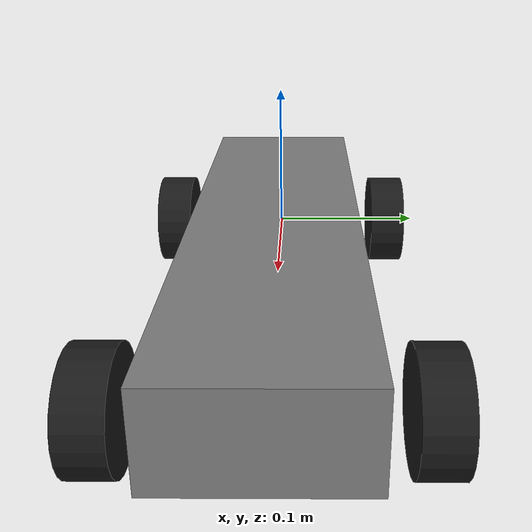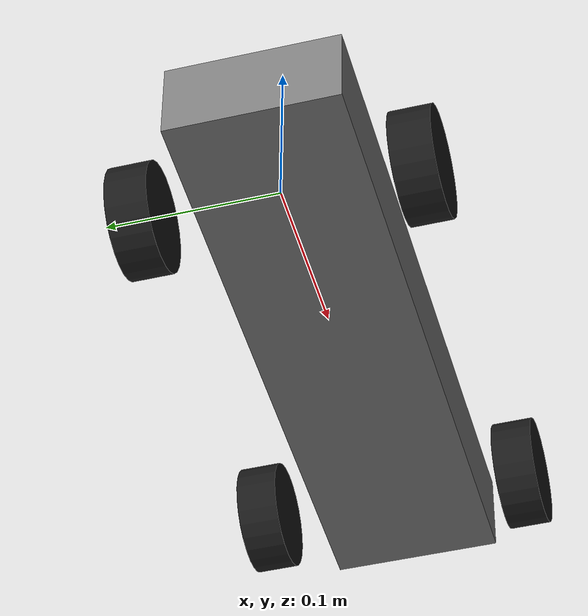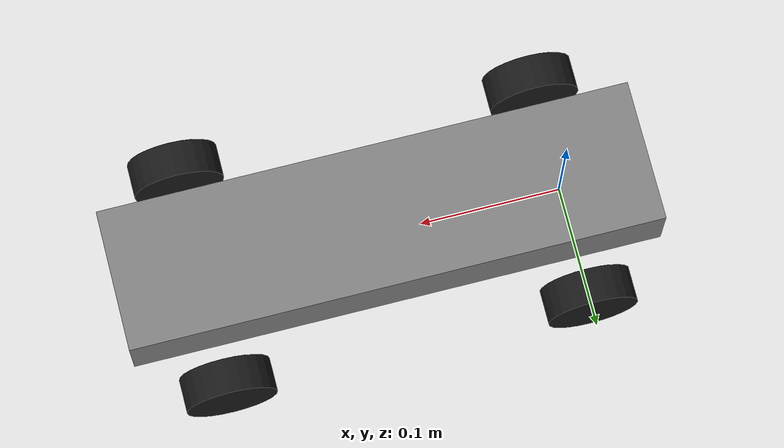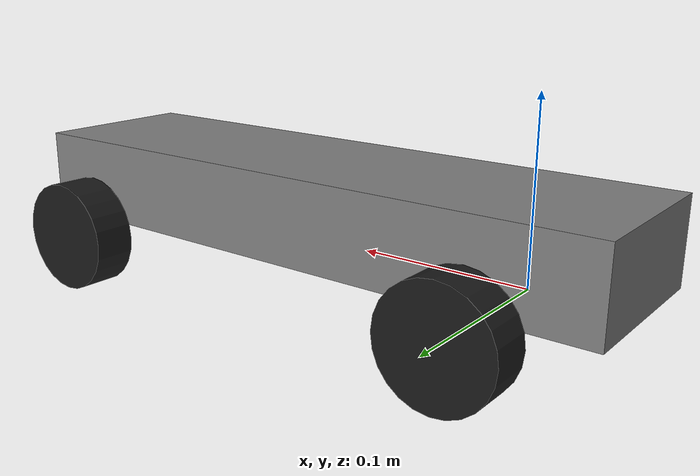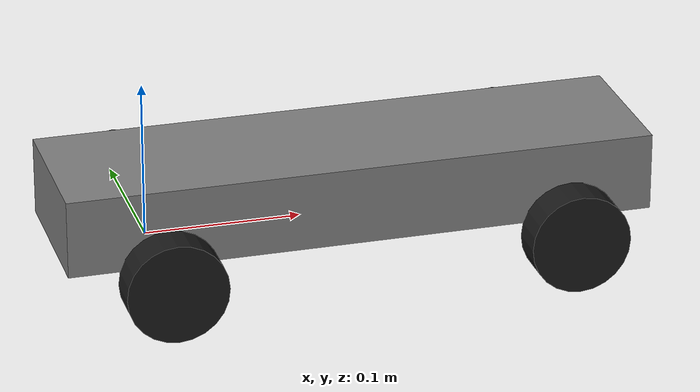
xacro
<?xml version="1.0"?>
<robot xmlns:xacro="http://www.ros.org/wiki/xacro" >

    <xacro:include filename="robot_materials.xacro"></xacro:include>
    <xacro:include filename="wheel_macros.xacro"></xacro:include>
    <xacro:include filename="inertial_macros.xacro"></xacro:include>

    <!-- Hardware Dimensions -->

    <!-- Chassis Specifications -->
    <xacro:property name="chassis_length" value="0.376"/>
    <xacro:property name="chassis_width" value="0.100"/>
    <xacro:property name="chassis_height" value="0.050"/>
    <xacro:property name="chassis_mass" value="1.2"/>

    <!-- Wheel Specifications -->
    <xacro:property name="wheel_radius" value="0.032"/>
    <xacro:property name="wheel_length" value="0.024"/>
    <xacro:property name="wheel_mass" value="0.03"/>
    <xacro:property name="max_steer_angle" value="0.52"/> <!-- 30 Degrees turning radius -->

    <!-- Joint offsets -->
    <xacro:property name="track_width" value="0.158"/>
    <xacro:property name="wheel_base" value="0.257"/>

    <!-- Calculated Joint origins -->
    <xacro:property name="wheel_offset_y" value="${track_width / 2}"/>
    <!-- Rear wheels are at x=0. Front wheels are at x=wheel_base -->

    <!-- Base Link -->
    <link name="base_link">

    </link>

    <!-- Chassis Link-->
    <joint name="chassis_joint" type="fixed">
        <parent link="base_link"/>
        <child link="chassis_link"/>
        <origin xyz="${wheel_base / 2} 0 ${chassis_height / 2}"/>
    </joint>

    <link name="chassis_link">
        <visual>
            <geometry>
                <box size="${chassis_length} ${chassis_width} ${chassis_height}"/>
            </geometry>
            <material name="gray"/>
        </visual>
        <collision>
            <geometry>
                <box size="${chassis_length} ${chassis_width} ${chassis_height}"/>
            </geometry>
        </collision>
        <xacro:inertial_box mass="${chassis_mass}" x="${chassis_length}" y="${chassis_width}" z="${chassis_height}">
            <origin xyz="0 0 0"/>
        </xacro:inertial_box>
    </link>

    <!-- Rear Right Wheel Link -->
    <xacro:fixed_wheel prefix="rr" x_offset="0" y_reflect="-1" />

    <!-- Rear Left Wheel Link-->
    <xacro:fixed_wheel prefix="rl" x_offset="0" y_reflect="1" />

    <!-- Front Right Wheel Link -->
    <xacro:steered_wheel prefix="fr" x_offset="${wheel_base}" y_reflect="-1" />

    <!-- Front Left Wheel Link -->
    <xacro:steered_wheel prefix="fl" x_offset="${wheel_base}" y_reflect="1" />

</robot>

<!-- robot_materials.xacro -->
<robot xmlns:xacro="http://www.ros.org/wiki/xacro" >

    <material name="gray">
        <color rgba="0.5 0.5 0.5 1" />
    </material>

    <material name="black">
        <color rgba="0.1 0.1 0.1 1"/>
    </material>

</robot>

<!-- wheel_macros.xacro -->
<robot xmlns:xacro="http://www.ros.org/wiki/xacro">

    <!-- Fixed Wheel Macro -->
    <xacro:macro name="fixed_wheel" params="prefix x_offset y_reflect">
        <joint name="${prefix}_wheel_joint" type="continuous">
            <parent link="base_link"/>
            <child link="${prefix}_wheel_link"/>
            <origin xyz="${x_offset} ${y_reflect * wheel_offset_y} 0" rpy="-${pi / 2} 0 0"/>
            <axis xyz="0 0 1"/>
        </joint>

        <link name="${prefix}_wheel_link">
            <visual>
                <geometry>
                    <cylinder radius="${wheel_radius}" length="${wheel_length}"/>
                </geometry>
                <material name="black"/>
            </visual>
            <collision>
                <geometry>
                    <cylinder radius="${wheel_radius}" length="${wheel_length}"/>
                </geometry>
                <material name="black"/>
            </collision>
            <xacro:inertial_cylinder mass="${wheel_mass}" length="${wheel_length}" radius="${wheel_radius}">
                <origin xyz="0 0 0"/>
            </xacro:inertial_cylinder>
        </link>
        </xacro:macro>

    <!-- Steered Wheel Macro -->
     <xacro:macro name="steered_wheel" params="prefix x_offset y_reflect">
        <!-- Steering Knuckle -->
        <joint name="${prefix}_steer_joint" type="revolute">
            <parent link="base_link"/>
            <child link="${prefix}_steer_link"/>
            <origin xyz="${x_offset} ${y_reflect * wheel_offset_y} 0"/>
            <axis xyz="0 0 1"/>
            <limit lower="-0.52" upper="0.52" effort="10.0" velocity="5.0"/>
        </joint>

        <link name="${prefix}_steer_link">

        </link>

        <!-- Wheel -->
        <joint name="${prefix}_wheel_joint" type="continuous">
            <parent link="${prefix}_steer_link"/>
            <child link="${prefix}_wheel_link"/>
            <origin xyz="0 0 0" rpy="-${pi / 2} 0 0"/>
            <axis xyz="0 0 1"/>
        </joint>

        <link name="${prefix}_wheel_link">
            <visual>
                <geometry>
                    <cylinder radius="${wheel_radius}" length="${wheel_length}"/>
                </geometry>
                <material name="black"/>
            </visual>
            <collision>
                <geometry>
                    <cylinder radius="${wheel_radius}" length="${wheel_length}"/>
                </geometry>
            </collision>
            <xacro:inertial_cylinder mass="${wheel_mass}" length="${wheel_length}" radius="${wheel_radius}">
                <origin xyz="0 0 0"/>
            </xacro:inertial_cylinder>
        </link>
     </xacro:macro>
</robot>

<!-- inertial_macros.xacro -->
<robot xmlns:xacro="http://www.ros.org/wiki/xacro" >

    <!-- File created by Josh Newans from Articulated Robotics -->
    <!-- Specify some standard inertial calculations https://en.wikipedia.org/wiki/List_of_moments_of_inertia -->
    <!-- These make use of xacro's mathematical functionality -->

    <xacro:macro name="inertial_box" params="mass x y z *origin">
        <inertial>
            <xacro:insert_block name="origin"/>
            <mass value="${mass}" />
            <inertia ixx="${(1/12) * mass * (y*y+z*z)}" ixy="0.0" ixz="0.0"
                    iyy="${(1/12) * mass * (x*x+z*z)}" iyz="0.0"
                    izz="${(1/12) * mass * (x*x+y*y)}" />
        </inertial>
    </xacro:macro>

    <xacro:macro name="inertial_cylinder" params="mass length radius *origin">
        <inertial>
            <xacro:insert_block name="origin"/>
            <mass value="${mass}" />
            <inertia ixx="${(1/12) * mass * (3*radius*radius + length*length)}" ixy="0.0" ixz="0.0"
                    iyy="${(1/12) * mass * (3*radius*radius + length*length)}" iyz="0.0"
                    izz="${(1/2) * mass * (radius*radius)}" />
        </inertial>
    </xacro:macro>

</robot>
